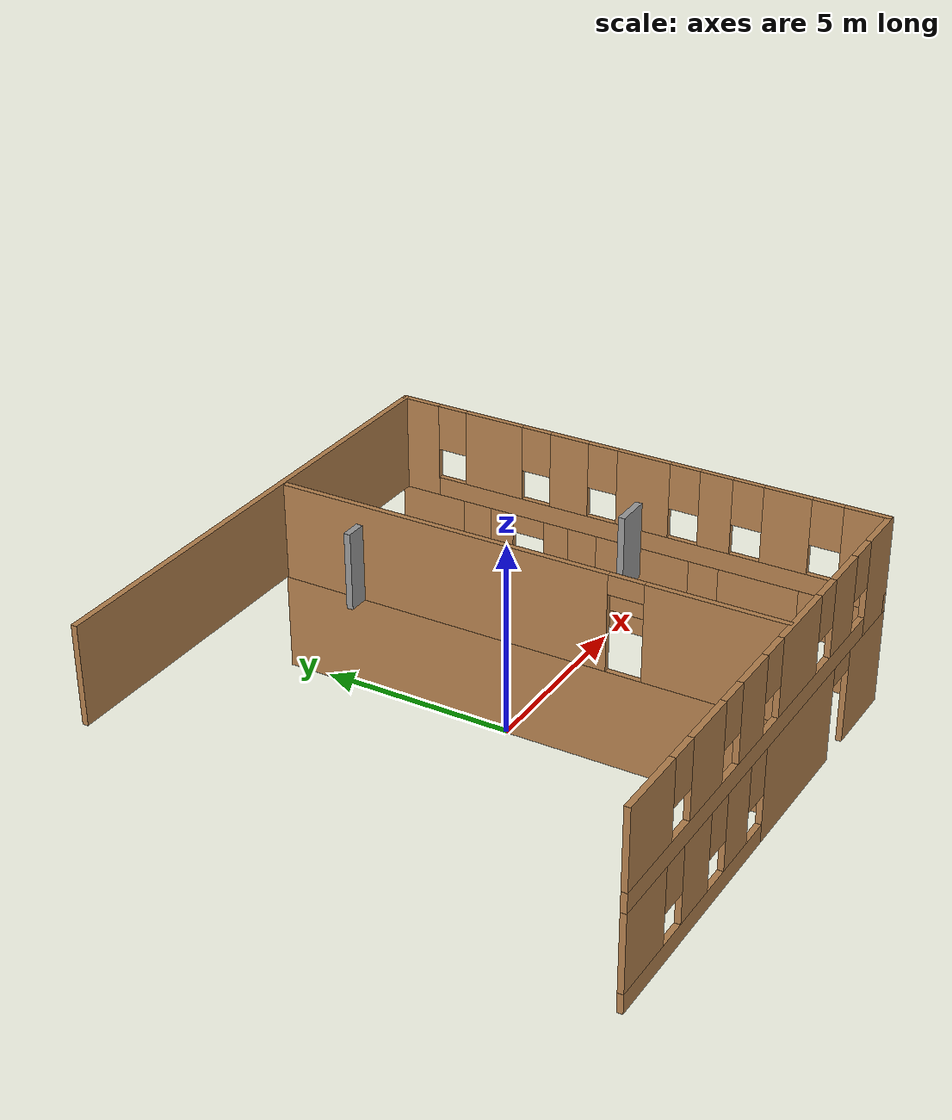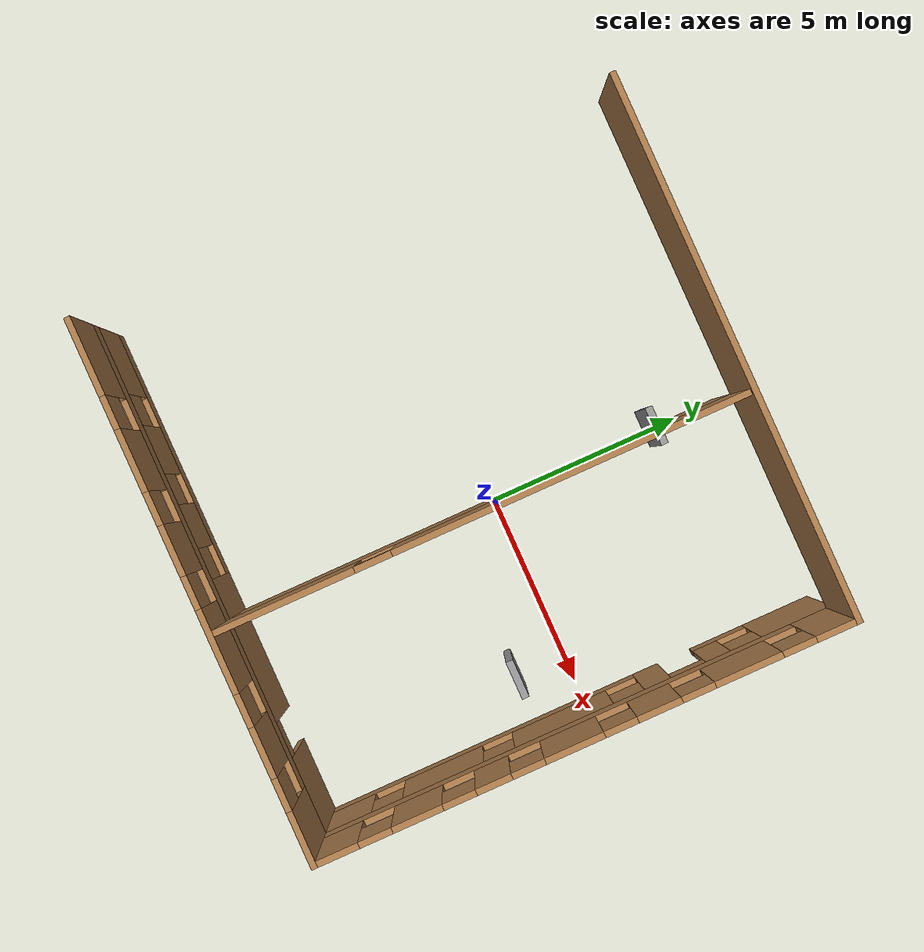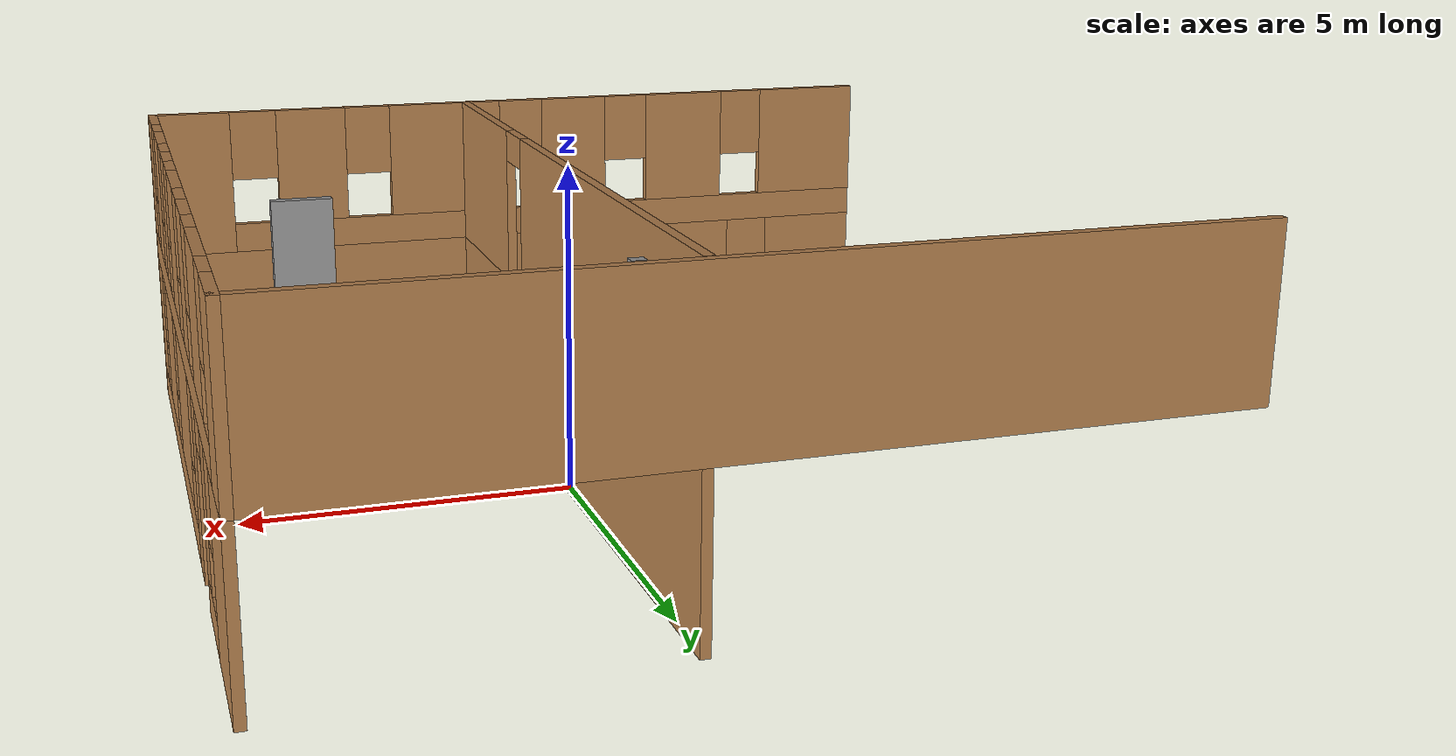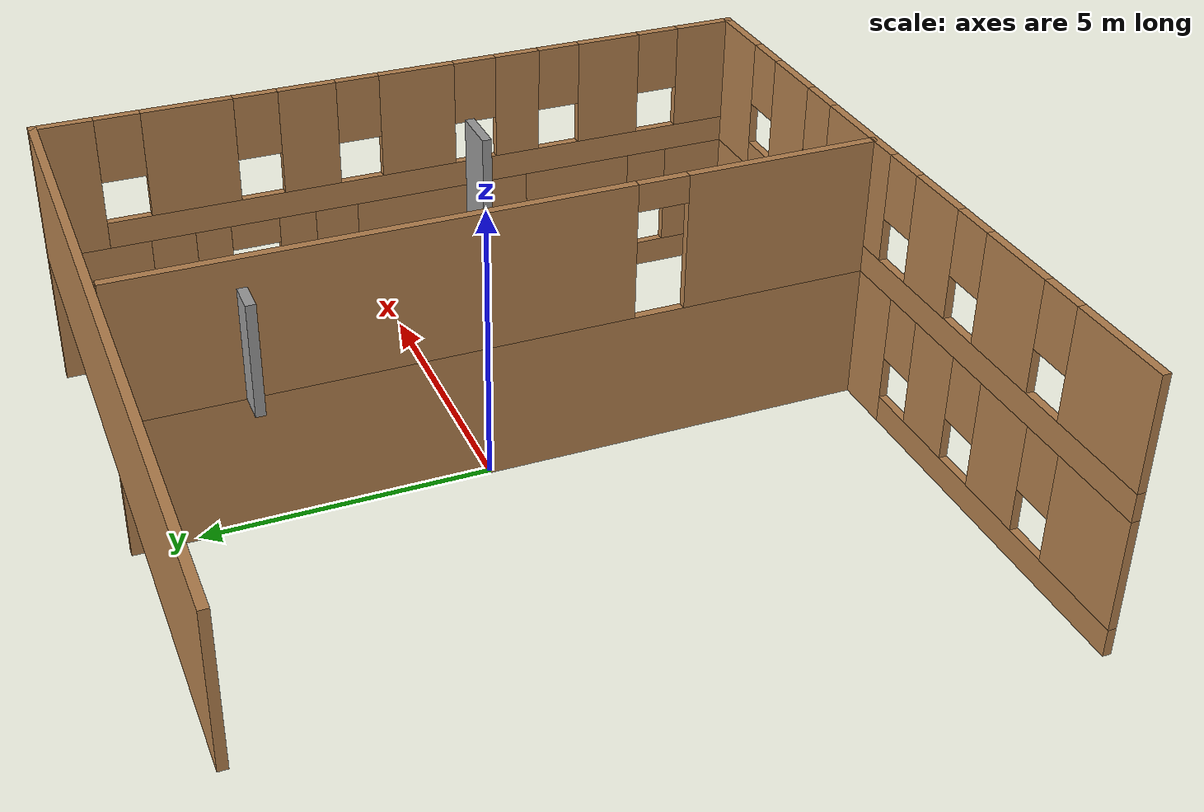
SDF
<sdf version="1.7">
 <model name="My_House">
  <pose>-1.02269 -0.39336 0 0 -0 0</pose>
  <link name="Door_13">
   <collision name="Door_13_Collision">
    <geometry><box><size>0.9 0.17 2</size></box></geometry>
    <pose>0 0 1 0 -0 0</pose>
   </collision>
   <visual name="Door_13_Visual">
    <pose>0 0 1 0 -0 0</pose>
    <geometry><box><size>0.9 0.17 2</size></box></geometry>
    <material>
     <script><uri>file://media/materials/scripts/gazebo.material</uri><name>Gazebo/Grey</name></script>
    </material>
   </visual>
   <pose>0.873598 4.32494 2.5 0 -0 0</pose>
  </link>
  <link name="Door_8">
   <collision name="Door_8_Collision">
    <geometry><box><size>0.9 0.17 2</size></box></geometry>
    <pose>0 0 1 0 -0 0</pose>
   </collision>
   <visual name="Door_8_Visual">
    <pose>0 0 1 0 -0 0</pose>
    <geometry><box><size>0.9 0.17 2</size></box></geometry>
    <material>
     <script><uri>file://media/materials/scripts/gazebo.material</uri><name>Gazebo/Grey</name></script>
    </material>
   </visual>
   <pose>4.75733 -0.812915 2.5 0 -0 0</pose>
  </link>
  <link name="Wall_1">
   <pose>6.57023 0 0 0 -0 -1.5708</pose>
   <visual name="Wall_1_Visual_0">
    <pose>-5.71543 0 1.25 0 -0 0</pose>
    <geometry><box><size>1.81915 0.15 2.5</size></box></geometry>
    <material>
     <script><uri>file://media/materials/scripts/gazebo.material</uri><name>Gazebo/Wood</name></script>
     <ambient>1 1 1 1</ambient>
    </material>
    <meta><layer>0</layer></meta>
   </visual>
   <collision name="Wall_1_Collision_0">
    <geometry><box><size>1.81915 0.15 2.5</size></box></geometry>
    <pose>-5.71543 0 1.25 0 -0 0</pose>
   </collision>
   <visual name="Wall_1_Visual_1">
    <pose>-2.11534 0 1.25 0 -0 0</pose>
    <geometry><box><size>0.687312 0.15 2.5</size></box></geometry>
    <material>
     <script><uri>file://media/materials/scripts/gazebo.material</uri><name>Gazebo/Wood</name></script>
     <ambient>1 1 1 1</ambient>
    </material>
    <meta><layer>0</layer></meta>
   </visual>
   <collision name="Wall_1_Collision_1">
    <geometry><box><size>0.687312 0.15 2.5</size></box></geometry>
    <pose>-2.11534 0 1.25 0 -0 0</pose>
   </collision>
   <visual name="Wall_1_Visual_2">
    <pose>-4.08243 0 0.25 0 -0 0</pose>
    <geometry><box><size>1.44686 0.15 0.5</size></box></geometry>
    <material>
     <script><uri>file://media/materials/scripts/gazebo.material</uri><name>Gazebo/Wood</name></script>
     <ambient>1 1 1 1</ambient>
    </material>
    <meta><layer>0</layer></meta>
   </visual>
   <collision name="Wall_1_Collision_2">
    <geometry><box><size>1.44686 0.15 0.5</size></box></geometry>
    <pose>-4.08243 0 0.25 0 -0 0</pose>
   </collision>
   <visual name="Wall_1_Visual_3">
    <pose>2.42666 0 0.25 0 -0 0</pose>
    <geometry><box><size>8.39669 0.15 0.5</size></box></geometry>
    <material>
     <script><uri>file://media/materials/scripts/gazebo.material</uri><name>Gazebo/Wood</name></script>
     <ambient>1 1 1 1</ambient>
    </material>
    <meta><layer>0</layer></meta>
   </visual>
   <collision name="Wall_1_Collision_3">
    <geometry><box><size>8.39669 0.15 0.5</size></box></geometry>
    <pose>2.42666 0 0.25 0 -0 0</pose>
   </collision>
   <visual name="Wall_1_Visual_4">
    <pose>-3.68243 0 1.5 0 -0 0</pose>
    <geometry><box><size>0.646856 0.15 2</size></box></geometry>
    <material>
     <script><uri>file://media/materials/scripts/gazebo.material</uri><name>Gazebo/Wood</name></script>
     <ambient>1 1 1 1</ambient>
    </material>
    <meta><layer>0</layer></meta>
   </visual>
   <collision name="Wall_1_Collision_4">
    <geometry><box><size>0.646856 0.15 2</size></box></geometry>
    <pose>-3.68243 0 1.5 0 -0 0</pose>
   </collision>
   <visual name="Wall_1_Visual_5">
    <pose>-3.68243 0 1.5 0 -0 0</pose>
    <geometry><box><size>0.646856 0.15 2</size></box></geometry>
    <material>
     <script><uri>file://media/materials/scripts/gazebo.material</uri><name>Gazebo/Wood</name></script>
     <ambient>1 1 1 1</ambient>
    </material>
    <meta><layer>0</layer></meta>
   </visual>
   <collision name="Wall_1_Collision_5">
    <geometry><box><size>0.646856 0.15 2</size></box></geometry>
    <pose>-3.68243 0 1.5 0 -0 0</pose>
   </collision>
   <visual name="Wall_1_Visual_6">
    <pose>0.30722 0 1.5 0 -0 0</pose>
    <geometry><box><size>2.55781 0.15 2</size></box></geometry>
    <material>
     <script><uri>file://media/materials/scripts/gazebo.material</uri><name>Gazebo/Wood</name></script>
     <ambient>1 1 1 1</ambient>
    </material>
    <meta><layer>0</layer></meta>
   </visual>
   <collision name="Wall_1_Collision_6">
    <geometry><box><size>2.55781 0.15 2</size></box></geometry>
    <pose>0.30722 0 1.5 0 -0 0</pose>
   </collision>
   <visual name="Wall_1_Visual_7">
    <pose>3.44253 0 1.5 0 -0 0</pose>
    <geometry><box><size>2.1128 0.15 2</size></box></geometry>
    <material>
     <script><uri>file://media/materials/scripts/gazebo.material</uri><name>Gazebo/Wood</name></script>
     <ambient>1 1 1 1</ambient>
    </material>
    <meta><layer>0</layer></meta>
   </visual>
   <collision name="Wall_1_Collision_7">
    <geometry><box><size>2.1128 0.15 2</size></box></geometry>
    <pose>3.44253 0 1.5 0 -0 0</pose>
   </collision>
   <visual name="Wall_1_Visual_8">
    <pose>5.96196 0 1.5 0 -0 0</pose>
    <geometry><box><size>1.32607 0.15 2</size></box></geometry>
    <material>
     <script><uri>file://media/materials/scripts/gazebo.material</uri><name>Gazebo/Wood</name></script>
     <ambient>1 1 1 1</ambient>
    </material>
    <meta><layer>0</layer></meta>
   </visual>
   <collision name="Wall_1_Collision_8">
    <geometry><box><size>1.32607 0.15 2</size></box></geometry>
    <pose>5.96196 0 1.5 0 -0 0</pose>
   </collision>
   <visual name="Wall_1_Visual_9">
    <pose>-4.40585 0 1.9 0 -0 0</pose>
    <geometry><box><size>0.8 0.15 1.2</size></box></geometry>
    <material>
     <script><uri>file://media/materials/scripts/gazebo.material</uri><name>Gazebo/Wood</name></script>
     <ambient>1 1 1 1</ambient>
    </material>
    <meta><layer>0</layer></meta>
   </visual>
   <collision name="Wall_1_Collision_9">
    <geometry><box><size>0.8 0.15 1.2</size></box></geometry>
    <pose>-4.40585 0 1.9 0 -0 0</pose>
   </collision>
   <visual name="Wall_1_Visual_10">
    <pose>-1.37169 0 1.9 0 -0 0</pose>
    <geometry><box><size>0.8 0.15 1.2</size></box></geometry>
    <material>
     <script><uri>file://media/materials/scripts/gazebo.material</uri><name>Gazebo/Wood</name></script>
     <ambient>1 1 1 1</ambient>
    </material>
    <meta><layer>0</layer></meta>
   </visual>
   <collision name="Wall_1_Collision_10">
    <geometry><box><size>0.8 0.15 1.2</size></box></geometry>
    <pose>-1.37169 0 1.9 0 -0 0</pose>
   </collision>
   <visual name="Wall_1_Visual_11">
    <pose>1.98613 0 1.9 0 -0 0</pose>
    <geometry><box><size>0.8 0.15 1.2</size></box></geometry>
    <material>
     <script><uri>file://media/materials/scripts/gazebo.material</uri><name>Gazebo/Wood</name></script>
     <ambient>1 1 1 1</ambient>
    </material>
    <meta><layer>0</layer></meta>
   </visual>
   <collision name="Wall_1_Collision_11">
    <geometry><box><size>0.8 0.15 1.2</size></box></geometry>
    <pose>1.98613 0 1.9 0 -0 0</pose>
   </collision>
   <visual name="Wall_1_Visual_12">
    <pose>4.89893 0 1.9 0 -0 0</pose>
    <geometry><box><size>0.8 0.15 1.2</size></box></geometry>
    <material>
     <script><uri>file://media/materials/scripts/gazebo.material</uri><name>Gazebo/Wood</name></script>
     <ambient>1 1 1 1</ambient>
    </material>
    <meta><layer>0</layer></meta>
   </visual>
   <collision name="Wall_1_Collision_12">
    <geometry><box><size>0.8 0.15 1.2</size></box></geometry>
    <pose>4.89893 0 1.9 0 -0 0</pose>
   </collision>
   <visual name="Wall_1_Visual_13">
    <pose>-2.909 0 2.25 0 -0 0</pose>
    <geometry><box><size>0.9 0.15 0.5</size></box></geometry>
    <material>
     <script><uri>file://media/materials/scripts/gazebo.material</uri><name>Gazebo/Wood</name></script>
     <ambient>1 1 1 1</ambient>
    </material>
    <meta><layer>0</layer></meta>
   </visual>
   <collision name="Wall_1_Collision_13">
    <geometry><box><size>0.9 0.15 0.5</size></box></geometry>
    <pose>-2.909 0 2.25 0 -0 0</pose>
   </collision>
   <visual name="Wall_1_Visual_14">
    <pose>-2.909 0 2.25 0 -0 0</pose>
    <geometry><box><size>0.9 0.15 0.5</size></box></geometry>
    <material>
     <script><uri>file://media/materials/scripts/gazebo.material</uri><name>Gazebo/Wood</name></script>
     <ambient>1 1 1 1</ambient>
    </material>
    <meta><layer>0</layer></meta>
   </visual>
   <collision name="Wall_1_Collision_14">
    <geometry><box><size>0.9 0.15 0.5</size></box></geometry>
    <pose>-2.909 0 2.25 0 -0 0</pose>
   </collision>
  </link>
  <link name="Wall_2">
   <pose>0.020227 -6.55 0 0 -0 3.14159</pose>
   <visual name="Wall_2_Visual_0">
    <pose>-5.58241 0 1.25 0 -0 0</pose>
    <geometry><box><size>2.08518 0.15 2.5</size></box></geometry>
    <material>
     <script><uri>file://media/materials/scripts/gazebo.material</uri><name>Gazebo/Wood</name></script>
     <ambient>1 0.764706 0.305882 1</ambient>
    </material>
    <meta><layer>0</layer></meta>
   </visual>
   <collision name="Wall_2_Collision_0">
    <geometry><box><size>2.08518 0.15 2.5</size></box></geometry>
    <pose>-5.58241 0 1.25 0 -0 0</pose>
   </collision>
   <visual name="Wall_2_Visual_1">
    <pose>-1.77908 0 1.25 0 -0 0</pose>
    <geometry><box><size>3.72148 0.15 2.5</size></box></geometry>
    <material>
     <script><uri>file://media/materials/scripts/gazebo.material</uri><name>Gazebo/Wood</name></script>
     <ambient>1 0.764706 0.305882 1</ambient>
    </material>
    <meta><layer>0</layer></meta>
   </visual>
   <collision name="Wall_2_Collision_1">
    <geometry><box><size>3.72148 0.15 2.5</size></box></geometry>
    <pose>-1.77908 0 1.25 0 -0 0</pose>
   </collision>
   <visual name="Wall_2_Visual_2">
    <pose>3.35333 0 0.25 0 -0 0</pose>
    <geometry><box><size>6.54334 0.15 0.5</size></box></geometry>
    <material>
     <script><uri>file://media/materials/scripts/gazebo.material</uri><name>Gazebo/Wood</name></script>
     <ambient>1 0.764706 0.305882 1</ambient>
    </material>
    <meta><layer>0</layer></meta>
   </visual>
   <collision name="Wall_2_Collision_2">
    <geometry><box><size>6.54334 0.15 0.5</size></box></geometry>
    <pose>3.35333 0 0.25 0 -0 0</pose>
   </collision>
   <visual name="Wall_2_Visual_3">
    <pose>1.4526 0 1.5 0 -0 0</pose>
    <geometry><box><size>1.14187 0.15 2</size></box></geometry>
    <material>
     <script><uri>file://media/materials/scripts/gazebo.material</uri><name>Gazebo/Wood</name></script>
     <ambient>1 0.764706 0.305882 1</ambient>
    </material>
    <meta><layer>0</layer></meta>
   </visual>
   <collision name="Wall_2_Collision_3">
    <geometry><box><size>1.14187 0.15 2</size></box></geometry>
    <pose>1.4526 0 1.5 0 -0 0</pose>
   </collision>
   <visual name="Wall_2_Visual_4">
    <pose>3.45515 0 1.5 0 -0 0</pose>
    <geometry><box><size>1.26323 0.15 2</size></box></geometry>
    <material>
     <script><uri>file://media/materials/scripts/gazebo.material</uri><name>Gazebo/Wood</name></script>
     <ambient>1 0.764706 0.305882 1</ambient>
    </material>
    <meta><layer>0</layer></meta>
   </visual>
   <collision name="Wall_2_Collision_4">
    <geometry><box><size>1.26323 0.15 2</size></box></geometry>
    <pose>3.45515 0 1.5 0 -0 0</pose>
   </collision>
   <visual name="Wall_2_Visual_5">
    <pose>5.75588 0 1.5 0 -0 0</pose>
    <geometry><box><size>1.73823 0.15 2</size></box></geometry>
    <material>
     <script><uri>file://media/materials/scripts/gazebo.material</uri><name>Gazebo/Wood</name></script>
     <ambient>1 0.764706 0.305882 1</ambient>
    </material>
    <meta><layer>0</layer></meta>
   </visual>
   <collision name="Wall_2_Collision_5">
    <geometry><box><size>1.73823 0.15 2</size></box></geometry>
    <pose>5.75588 0 1.5 0 -0 0</pose>
   </collision>
   <visual name="Wall_2_Visual_6">
    <pose>0.481663 0 1.9 0 -0 0</pose>
    <geometry><box><size>0.8 0.15 1.2</size></box></geometry>
    <material>
     <script><uri>file://media/materials/scripts/gazebo.material</uri><name>Gazebo/Wood</name></script>
     <ambient>1 0.764706 0.305882 1</ambient>
    </material>
    <meta><layer>0</layer></meta>
   </visual>
   <collision name="Wall_2_Collision_6">
    <geometry><box><size>0.8 0.15 1.2</size></box></geometry>
    <pose>0.481663 0 1.9 0 -0 0</pose>
   </collision>
   <visual name="Wall_2_Visual_7">
    <pose>2.42353 0 1.9 0 -0 0</pose>
    <geometry><box><size>0.8 0.15 1.2</size></box></geometry>
    <material>
     <script><uri>file://media/materials/scripts/gazebo.material</uri><name>Gazebo/Wood</name></script>
     <ambient>1 0.764706 0.305882 1</ambient>
    </material>
    <meta><layer>0</layer></meta>
   </visual>
   <collision name="Wall_2_Collision_7">
    <geometry><box><size>0.8 0.15 1.2</size></box></geometry>
    <pose>2.42353 0 1.9 0 -0 0</pose>
   </collision>
   <visual name="Wall_2_Visual_8">
    <pose>4.48677 0 1.9 0 -0 0</pose>
    <geometry><box><size>0.8 0.15 1.2</size></box></geometry>
    <material>
     <script><uri>file://media/materials/scripts/gazebo.material</uri><name>Gazebo/Wood</name></script>
     <ambient>1 0.764706 0.305882 1</ambient>
    </material>
    <meta><layer>0</layer></meta>
   </visual>
   <collision name="Wall_2_Collision_8">
    <geometry><box><size>0.8 0.15 1.2</size></box></geometry>
    <pose>4.48677 0 1.9 0 -0 0</pose>
   </collision>
   <visual name="Wall_2_Visual_9">
    <pose>-4.08982 0 2.25 0 -0 0</pose>
    <geometry><box><size>0.9 0.15 0.5</size></box></geometry>
    <material>
     <script><uri>file://media/materials/scripts/gazebo.material</uri><name>Gazebo/Wood</name></script>
     <ambient>1 0.764706 0.305882 1</ambient>
    </material>
    <meta><layer>0</layer></meta>
   </visual>
   <collision name="Wall_2_Collision_9">
    <geometry><box><size>0.9 0.15 0.5</size></box></geometry>
    <pose>-4.08982 0 2.25 0 -0 0</pose>
   </collision>
  </link>
  <link name="Wall_7">
   <collision name="Wall_7_Collision">
    <geometry><box><size>13 0.15 2.5</size></box></geometry>
    <pose>0 0 1.25 0 -0 0</pose>
   </collision>
   <visual name="Wall_7_Visual">
    <pose>0 0 1.25 0 -0 0</pose>
    <geometry><box><size>13 0.15 2.5</size></box></geometry>
    <material>
     <script><uri>file://media/materials/scripts/gazebo.material</uri><name>Gazebo/Wood</name></script>
     <ambient>1 1 1 1</ambient>
    </material>
    <meta><layer>0</layer></meta>
   </visual>
   <pose>1.03542 -0.01124 0 0 -0 1.5708</pose>
  </link>
  <link name="Wall_75">
   <collision name="Wall_75_Collision">
    <geometry><box><size>13.25 0.15 2.5</size></box></geometry>
    <pose>0 0 1.25 0 -0 0</pose>
   </collision>
   <visual name="Wall_75_Visual">
    <pose>0 0 1.25 0 -0 0</pose>
    <geometry><box><size>13.25 0.15 2.5</size></box></geometry>
    <material>
     <script><uri>file://media/materials/scripts/gazebo.material</uri><name>Gazebo/Wood</name></script>
     <ambient>1 0.764706 0.305882 1</ambient>
    </material>
    <meta><layer>1</layer></meta>
   </visual>
   <pose>0.020227 6.55 2.5 0 -0 0</pose>
  </link>
  <link name="Wall_76">
   <pose>6.57023 0 2.5 0 -0 -1.5708</pose>
   <visual name="Wall_76_Visual_0">
    <pose>-6.07953 0 1.25 0 -0 0</pose>
    <geometry><box><size>1.09095 0.15 2.5</size></box></geometry>
    <material>
     <script><uri>file://media/materials/scripts/gazebo.material</uri><name>Gazebo/Wood</name></script>
     <ambient>1 0.764706 0.305882 1</ambient>
    </material>
    <meta><layer>1</layer></meta>
   </visual>
   <collision name="Wall_76_Collision_0">
    <geometry><box><size>1.09095 0.15 2.5</size></box></geometry>
    <pose>-6.07953 0 1.25 0 -0 0</pose>
   </collision>
   <visual name="Wall_76_Visual_1">
    <pose>0.545473 0 0.25 0 -0 0</pose>
    <geometry><box><size>12.1591 0.15 0.5</size></box></geometry>
    <material>
     <script><uri>file://media/materials/scripts/gazebo.material</uri><name>Gazebo/Wood</name></script>
     <ambient>1 0.764706 0.305882 1</ambient>
    </material>
    <meta><layer>1</layer></meta>
   </visual>
   <collision name="Wall_76_Collision_1">
    <geometry><box><size>12.1591 0.15 0.5</size></box></geometry>
    <pose>0.545473 0 0.25 0 -0 0</pose>
   </collision>
   <visual name="Wall_76_Visual_2">
    <pose>-3.92039 0 1.5 0 -0 0</pose>
    <geometry><box><size>1.62733 0.15 2</size></box></geometry>
    <material>
     <script><uri>file://media/materials/scripts/gazebo.material</uri><name>Gazebo/Wood</name></script>
     <ambient>1 0.764706 0.305882 1</ambient>
    </material>
    <meta><layer>1</layer></meta>
   </visual>
   <collision name="Wall_76_Collision_2">
    <geometry><box><size>1.62733 0.15 2</size></box></geometry>
    <pose>-3.92039 0 1.5 0 -0 0</pose>
   </collision>
   <visual name="Wall_76_Visual_3">
    <pose>-1.77624 0 1.5 0 -0 0</pose>
    <geometry><box><size>1.06096 0.15 2</size></box></geometry>
    <material>
     <script><uri>file://media/materials/scripts/gazebo.material</uri><name>Gazebo/Wood</name></script>
     <ambient>1 0.764706 0.305882 1</ambient>
    </material>
    <meta><layer>1</layer></meta>
   </visual>
   <collision name="Wall_76_Collision_3">
    <geometry><box><size>1.06096 0.15 2</size></box></geometry>
    <pose>-1.77624 0 1.5 0 -0 0</pose>
   </collision>
   <visual name="Wall_76_Visual_4">
    <pose>0.266765 0 1.5 0 -0 0</pose>
    <geometry><box><size>1.42506 0.15 2</size></box></geometry>
    <material>
     <script><uri>file://media/materials/scripts/gazebo.material</uri><name>Gazebo/Wood</name></script>
     <ambient>1 0.764706 0.305882 1</ambient>
    </material>
    <meta><layer>1</layer></meta>
   </visual>
   <collision name="Wall_76_Collision_4">
    <geometry><box><size>1.42506 0.15 2</size></box></geometry>
    <pose>0.266765 0 1.5 0 -0 0</pose>
   </collision>
   <visual name="Wall_76_Visual_5">
    <pose>2.20863 0 1.5 0 -0 0</pose>
    <geometry><box><size>0.858679 0.15 2</size></box></geometry>
    <material>
     <script><uri>file://media/materials/scripts/gazebo.material</uri><name>Gazebo/Wood</name></script>
     <ambient>1 0.764706 0.305882 1</ambient>
    </material>
    <meta><layer>1</layer></meta>
   </visual>
   <collision name="Wall_76_Collision_5">
    <geometry><box><size>0.858679 0.15 2</size></box></geometry>
    <pose>2.20863 0 1.5 0 -0 0</pose>
   </collision>
   <visual name="Wall_76_Visual_6">
    <pose>4.04936 0 1.5 0 -0 0</pose>
    <geometry><box><size>1.22278 0.15 2</size></box></geometry>
    <material>
     <script><uri>file://media/materials/scripts/gazebo.material</uri><name>Gazebo/Wood</name></script>
     <ambient>1 0.764706 0.305882 1</ambient>
    </material>
    <meta><layer>1</layer></meta>
   </visual>
   <collision name="Wall_76_Collision_6">
    <geometry><box><size>1.22278 0.15 2</size></box></geometry>
    <pose>4.04936 0 1.5 0 -0 0</pose>
   </collision>
   <visual name="Wall_76_Visual_7">
    <pose>6.04288 0 1.5 0 -0 0</pose>
    <geometry><box><size>1.16425 0.15 2</size></box></geometry>
    <material>
     <script><uri>file://media/materials/scripts/gazebo.material</uri><name>Gazebo/Wood</name></script>
     <ambient>1 0.764706 0.305882 1</ambient>
    </material>
    <meta><layer>1</layer></meta>
   </visual>
   <collision name="Wall_76_Collision_7">
    <geometry><box><size>1.16425 0.15 2</size></box></geometry>
    <pose>6.04288 0 1.5 0 -0 0</pose>
   </collision>
   <visual name="Wall_76_Visual_8">
    <pose>-5.13406 0 1.9 0 -0 0</pose>
    <geometry><box><size>0.8 0.15 1.2</size></box></geometry>
    <material>
     <script><uri>file://media/materials/scripts/gazebo.material</uri><name>Gazebo/Wood</name></script>
     <ambient>1 0.764706 0.305882 1</ambient>
    </material>
    <meta><layer>1</layer></meta>
   </visual>
   <collision name="Wall_76_Collision_8">
    <geometry><box><size>0.8 0.15 1.2</size></box></geometry>
    <pose>-5.13406 0 1.9 0 -0 0</pose>
   </collision>
   <visual name="Wall_76_Visual_9">
    <pose>-2.70672 0 1.9 0 -0 0</pose>
    <geometry><box><size>0.8 0.15 1.2</size></box></geometry>
    <material>
     <script><uri>file://media/materials/scripts/gazebo.material</uri><name>Gazebo/Wood</name></script>
     <ambient>1 0.764706 0.305882 1</ambient>
    </material>
    <meta><layer>1</layer></meta>
   </visual>
   <collision name="Wall_76_Collision_9">
    <geometry><box><size>0.8 0.15 1.2</size></box></geometry>
    <pose>-2.70672 0 1.9 0 -0 0</pose>
   </collision>
   <visual name="Wall_76_Visual_10">
    <pose>-0.845764 0 1.9 0 -0 0</pose>
    <geometry><box><size>0.8 0.15 1.2</size></box></geometry>
    <material>
     <script><uri>file://media/materials/scripts/gazebo.material</uri><name>Gazebo/Wood</name></script>
     <ambient>1 0.764706 0.305882 1</ambient>
    </material>
    <meta><layer>1</layer></meta>
   </visual>
   <collision name="Wall_76_Collision_10">
    <geometry><box><size>0.8 0.15 1.2</size></box></geometry>
    <pose>-0.845764 0 1.9 0 -0 0</pose>
   </collision>
   <visual name="Wall_76_Visual_11">
    <pose>1.37929 0 1.9 0 -0 0</pose>
    <geometry><box><size>0.8 0.15 1.2</size></box></geometry>
    <material>
     <script><uri>file://media/materials/scripts/gazebo.material</uri><name>Gazebo/Wood</name></script>
     <ambient>1 0.764706 0.305882 1</ambient>
    </material>
    <meta><layer>1</layer></meta>
   </visual>
   <collision name="Wall_76_Collision_11">
    <geometry><box><size>0.8 0.15 1.2</size></box></geometry>
    <pose>1.37929 0 1.9 0 -0 0</pose>
   </collision>
   <visual name="Wall_76_Visual_12">
    <pose>3.03797 0 1.9 0 -0 0</pose>
    <geometry><box><size>0.8 0.15 1.2</size></box></geometry>
    <material>
     <script><uri>file://media/materials/scripts/gazebo.material</uri><name>Gazebo/Wood</name></script>
     <ambient>1 0.764706 0.305882 1</ambient>
    </material>
    <meta><layer>1</layer></meta>
   </visual>
   <collision name="Wall_76_Collision_12">
    <geometry><box><size>0.8 0.15 1.2</size></box></geometry>
    <pose>3.03797 0 1.9 0 -0 0</pose>
   </collision>
   <visual name="Wall_76_Visual_13">
    <pose>5.06075 0 1.9 0 -0 0</pose>
    <geometry><box><size>0.8 0.15 1.2</size></box></geometry>
    <material>
     <script><uri>file://media/materials/scripts/gazebo.material</uri><name>Gazebo/Wood</name></script>
     <ambient>1 0.764706 0.305882 1</ambient>
    </material>
    <meta><layer>1</layer></meta>
   </visual>
   <collision name="Wall_76_Collision_13">
    <geometry><box><size>0.8 0.15 1.2</size></box></geometry>
    <pose>5.06075 0 1.9 0 -0 0</pose>
   </collision>
  </link>
  <link name="Wall_77">
   <pose>0.020227 -6.55 2.5 0 -0 3.14159</pose>
   <visual name="Wall_77_Visual_0">
    <pose>-5.94174 0 1.25 0 -0 0</pose>
    <geometry><box><size>1.36653 0.15 2.5</size></box></geometry>
    <material>
     <script><uri>file://media/materials/scripts/gazebo.material</uri><name>Gazebo/Wood</name></script>
     <ambient>1 1 1 1</ambient>
    </material>
    <meta><layer>1</layer></meta>
   </visual>
   <collision name="Wall_77_Collision_0">
    <geometry><box><size>1.36653 0.15 2.5</size></box></geometry>
    <pose>-5.94174 0 1.25 0 -0 0</pose>
   </collision>
   <visual name="Wall_77_Visual_1">
    <pose>0.683264 0 0.25 0 -0 0</pose>
    <geometry><box><size>11.8835 0.15 0.5</size></box></geometry>
    <material>
     <script><uri>file://media/materials/scripts/gazebo.material</uri><name>Gazebo/Wood</name></script>
     <ambient>1 1 1 1</ambient>
    </material>
    <meta><layer>1</layer></meta>
   </visual>
   <collision name="Wall_77_Collision_1">
    <geometry><box><size>11.8835 0.15 0.5</size></box></geometry>
    <pose>0.683264 0 0.25 0 -0 0</pose>
   </collision>
   <visual name="Wall_77_Visual_2">
    <pose>-3.84708 0 1.5 0 -0 0</pose>
    <geometry><box><size>1.22278 0.15 2</size></box></geometry>
    <material>
     <script><uri>file://media/materials/scripts/gazebo.material</uri><name>Gazebo/Wood</name></script>
     <ambient>1 1 1 1</ambient>
    </material>
    <meta><layer>1</layer></meta>
   </visual>
   <collision name="Wall_77_Collision_2">
    <geometry><box><size>1.22278 0.15 2</size></box></geometry>
    <pose>-3.84708 0 1.5 0 -0 0</pose>
   </collision>
   <visual name="Wall_77_Visual_3">
    <pose>-1.41975 0 1.5 0 -0 0</pose>
    <geometry><box><size>2.03189 0.15 2</size></box></geometry>
    <material>
     <script><uri>file://media/materials/scripts/gazebo.material</uri><name>Gazebo/Wood</name></script>
     <ambient>1 1 1 1</ambient>
    </material>
    <meta><layer>1</layer></meta>
   </visual>
   <collision name="Wall_77_Collision_3">
    <geometry><box><size>2.03189 0.15 2</size></box></geometry>
    <pose>-1.41975 0 1.5 0 -0 0</pose>
   </collision>
   <visual name="Wall_77_Visual_4">
    <pose>1.00759 0 1.5 0 -0 0</pose>
    <geometry><box><size>1.22278 0.15 2</size></box></geometry>
    <material>
     <script><uri>file://media/materials/scripts/gazebo.material</uri><name>Gazebo/Wood</name></script>
     <ambient>1 1 1 1</ambient>
    </material>
    <meta><layer>1</layer></meta>
   </visual>
   <collision name="Wall_77_Collision_4">
    <geometry><box><size>1.22278 0.15 2</size></box></geometry>
    <pose>1.00759 0 1.5 0 -0 0</pose>
   </collision>
   <visual name="Wall_77_Visual_5">
    <pose>3.17196 0 1.5 0 -0 0</pose>
    <geometry><box><size>1.50597 0.15 2</size></box></geometry>
    <material>
     <script><uri>file://media/materials/scripts/gazebo.material</uri><name>Gazebo/Wood</name></script>
     <ambient>1 1 1 1</ambient>
    </material>
    <meta><layer>1</layer></meta>
   </visual>
   <collision name="Wall_77_Collision_5">
    <geometry><box><size>1.50597 0.15 2</size></box></geometry>
    <pose>3.17196 0 1.5 0 -0 0</pose>
   </collision>
   <visual name="Wall_77_Visual_6">
    <pose>5.67497 0 1.5 0 -0 0</pose>
    <geometry><box><size>1.90006 0.15 2</size></box></geometry>
    <material>
     <script><uri>file://media/materials/scripts/gazebo.material</uri><name>Gazebo/Wood</name></script>
     <ambient>1 1 1 1</ambient>
    </material>
    <meta><layer>1</layer></meta>
   </visual>
   <collision name="Wall_77_Collision_6">
    <geometry><box><size>1.90006 0.15 2</size></box></geometry>
    <pose>5.67497 0 1.5 0 -0 0</pose>
   </collision>
   <visual name="Wall_77_Visual_7">
    <pose>-4.85847 0 1.9 0 -0 0</pose>
    <geometry><box><size>0.8 0.15 1.2</size></box></geometry>
    <material>
     <script><uri>file://media/materials/scripts/gazebo.material</uri><name>Gazebo/Wood</name></script>
     <ambient>1 1 1 1</ambient>
    </material>
    <meta><layer>1</layer></meta>
   </visual>
   <collision name="Wall_77_Collision_7">
    <geometry><box><size>0.8 0.15 1.2</size></box></geometry>
    <pose>-4.85847 0 1.9 0 -0 0</pose>
   </collision>
   <visual name="Wall_77_Visual_8">
    <pose>-2.83569 0 1.9 0 -0 0</pose>
    <geometry><box><size>0.8 0.15 1.2</size></box></geometry>
    <material>
     <script><uri>file://media/materials/scripts/gazebo.material</uri><name>Gazebo/Wood</name></script>
     <ambient>1 1 1 1</ambient>
    </material>
    <meta><layer>1</layer></meta>
   </visual>
   <collision name="Wall_77_Collision_8">
    <geometry><box><size>0.8 0.15 1.2</size></box></geometry>
    <pose>-2.83569 0 1.9 0 -0 0</pose>
   </collision>
   <visual name="Wall_77_Visual_9">
    <pose>-0.003803 0 1.9 0 -0 0</pose>
    <geometry><box><size>0.8 0.15 1.2</size></box></geometry>
    <material>
     <script><uri>file://media/materials/scripts/gazebo.material</uri><name>Gazebo/Wood</name></script>
     <ambient>1 1 1 1</ambient>
    </material>
    <meta><layer>1</layer></meta>
   </visual>
   <collision name="Wall_77_Collision_9">
    <geometry><box><size>0.8 0.15 1.2</size></box></geometry>
    <pose>-0.003803 0 1.9 0 -0 0</pose>
   </collision>
   <visual name="Wall_77_Visual_10">
    <pose>2.01898 0 1.9 0 -0 0</pose>
    <geometry><box><size>0.8 0.15 1.2</size></box></geometry>
    <material>
     <script><uri>file://media/materials/scripts/gazebo.material</uri><name>Gazebo/Wood</name></script>
     <ambient>1 1 1 1</ambient>
    </material>
    <meta><layer>1</layer></meta>
   </visual>
   <collision name="Wall_77_Collision_10">
    <geometry><box><size>0.8 0.15 1.2</size></box></geometry>
    <pose>2.01898 0 1.9 0 -0 0</pose>
   </collision>
   <visual name="Wall_77_Visual_11">
    <pose>4.32494 0 1.9 0 -0 0</pose>
    <geometry><box><size>0.8 0.15 1.2</size></box></geometry>
    <material>
     <script><uri>file://media/materials/scripts/gazebo.material</uri><name>Gazebo/Wood</name></script>
     <ambient>1 1 1 1</ambient>
    </material>
    <meta><layer>1</layer></meta>
   </visual>
   <collision name="Wall_77_Collision_11">
    <geometry><box><size>0.8 0.15 1.2</size></box></geometry>
    <pose>4.32494 0 1.9 0 -0 0</pose>
   </collision>
  </link>
  <link name="Wall_80">
   <pose>1.03542 -0.051696 2.5 0 -0 1.5708</pose>
   <visual name="Wall_80_Visual_0">
    <pose>-4.76586 0 1.25 0 -0 0</pose>
    <geometry><box><size>3.46828 0.15 2.5</size></box></geometry>
    <material>
     <script><uri>file://media/materials/scripts/gazebo.material</uri><name>Gazebo/Wood</name></script>
     <ambient>1 1 1 1</ambient>
    </material>
    <meta><layer>1</layer></meta>
   </visual>
   <collision name="Wall_80_Collision_0">
    <geometry><box><size>3.46828 0.15 2.5</size></box></geometry>
    <pose>-4.76586 0 1.25 0 -0 0</pose>
   </collision>
   <visual name="Wall_80_Visual_1">
    <pose>2.18414 0 1.25 0 -0 0</pose>
    <geometry><box><size>8.63172 0.15 2.5</size></box></geometry>
    <material>
     <script><uri>file://media/materials/scripts/gazebo.material</uri><name>Gazebo/Wood</name></script>
     <ambient>1 1 1 1</ambient>
    </material>
    <meta><layer>1</layer></meta>
   </visual>
   <collision name="Wall_80_Collision_1">
    <geometry><box><size>8.63172 0.15 2.5</size></box></geometry>
    <pose>2.18414 0 1.25 0 -0 0</pose>
   </collision>
   <visual name="Wall_80_Visual_2">
    <pose>-2.58172 0 2.25 0 -0 0</pose>
    <geometry><box><size>0.9 0.15 0.5</size></box></geometry>
    <material>
     <script><uri>file://media/materials/scripts/gazebo.material</uri><name>Gazebo/Wood</name></script>
     <ambient>1 1 1 1</ambient>
    </material>
    <meta><layer>1</layer></meta>
   </visual>
   <collision name="Wall_80_Collision_2">
    <geometry><box><size>0.9 0.15 0.5</size></box></geometry>
    <pose>-2.58172 0 2.25 0 -0 0</pose>
   </collision>
  </link>
  <static>1</static>
 </model>
</sdf>
